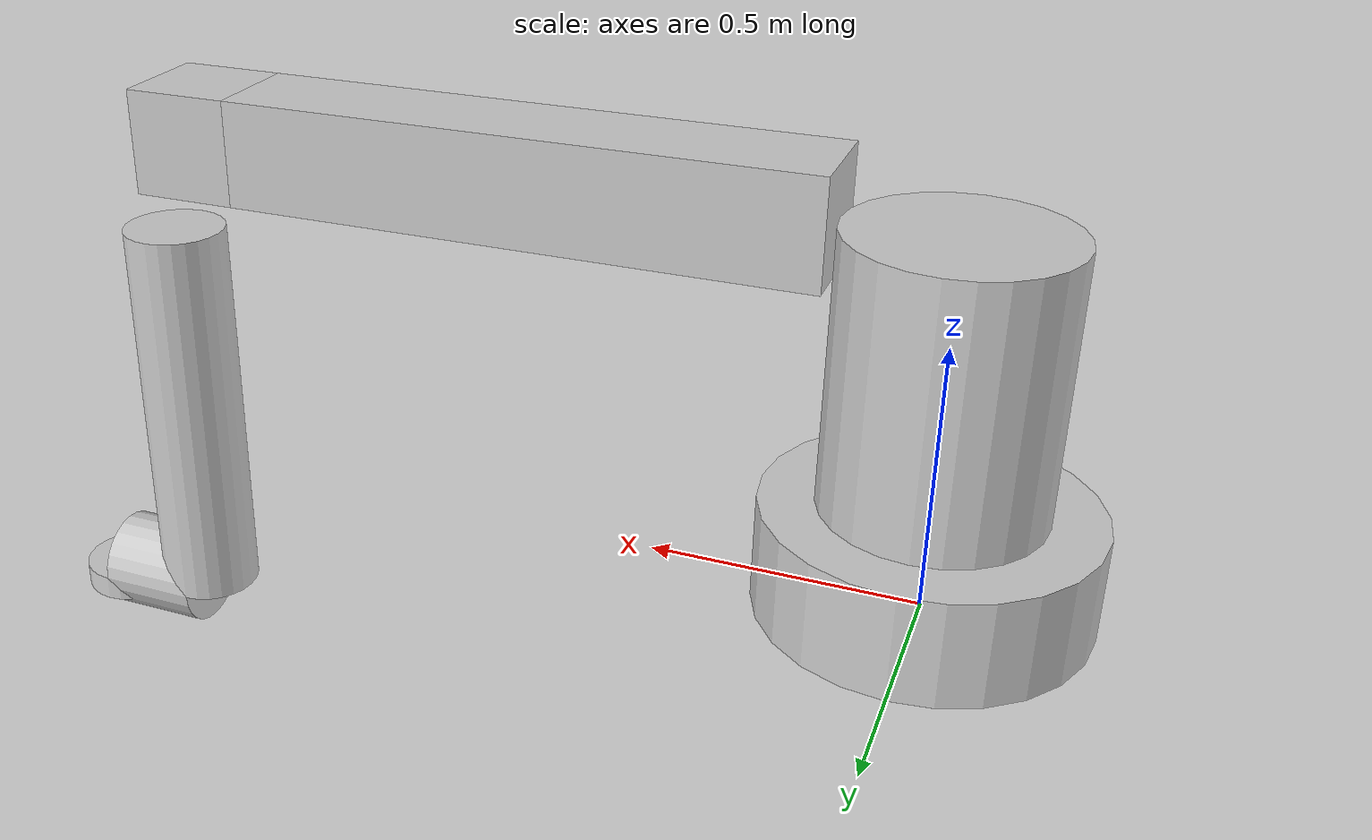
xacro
<?xml version="1.0"?>
<robot xmlns:xacro="http://wiki.ros.org/xacro" name="irb6700_235">
  <!-- Constants for IRB 6700-235/2.65 -->
  <!-- Using approximate inertias and distances for representation since exact ABB CAD is complex -->

  <material name="abb_white">
    <color rgba="0.8 0.8 0.8 1.0"/>
  </material>

  <link name="base_link">
    <visual>
      <geometry><cylinder length="0.2" radius="0.3"/></geometry>
      <origin xyz="0 0 0.1" rpy="0 0 0"/>
      <material name="abb_white"/>
    </visual>
    <collision>
      <geometry><cylinder length="0.2" radius="0.3"/></geometry>
      <origin xyz="0 0 0.1" rpy="0 0 0"/>
    </collision>
    <inertial>
      <mass value="50.0"/>
      <origin xyz="0 0 0.1" rpy="0 0 0"/>
      <inertia ixx="1.0" ixy="0" ixz="0" iyy="1.0" iyz="0" izz="1.0"/>
    </inertial>
  </link>

  <link name="link_1">
    <visual>
      <geometry><cylinder length="0.5" radius="0.2"/></geometry>
      <origin xyz="0 0 0.25" rpy="0 0 0"/>
      <material name="abb_white"/>
    </visual>
    <collision>
      <geometry><cylinder length="0.5" radius="0.2"/></geometry>
      <origin xyz="0 0 0.25" rpy="0 0 0"/>
    </collision>
    <inertial>
      <mass value="40.0"/>
      <origin xyz="0 0 0.25" rpy="0 0 0"/>
      <inertia ixx="1.0" ixy="0" ixz="0" iyy="1.0" iyz="0" izz="1.0"/>
    </inertial>
  </link>
  <joint name="joint_1" type="revolute">
    <parent link="base_link"/>
    <child link="link_1"/>
    <origin xyz="0 0 0.2" rpy="0 0 0"/>
    <axis xyz="0 0 1"/>
    <limit lower="-2.96" upper="2.96" effort="5000.0" velocity="1.74"/>
    <dynamics damping="50.0" friction="20.0"/>
  </joint>

  <link name="link_2">
    <visual>
      <geometry><box size="0.2 0.2 1.1"/></geometry>
      <origin xyz="0 0 0.55" rpy="0 0 0"/>
      <material name="abb_white"/>
    </visual>
    <collision>
      <geometry><box size="0.2 0.2 1.1"/></geometry>
      <origin xyz="0 0 0.55" rpy="0 0 0"/>
    </collision>
    <inertial>
      <mass value="40.0"/>
      <origin xyz="0 0 0.55" rpy="0 0 0"/>
      <inertia ixx="2.0" ixy="0" ixz="0" iyy="2.0" iyz="0" izz="0.5"/>
    </inertial>
  </link>
  <joint name="joint_2" type="revolute">
    <parent link="link_1"/>
    <child link="link_2"/>
    <origin xyz="0.2 0 0.5" rpy="0 1.570796327 0"/>
    <axis xyz="0 1 0"/>
    <limit lower="-1.13" upper="1.48" effort="4000.0" velocity="1.57"/>
    <dynamics damping="50.0" friction="20.0"/>
  </joint>

  <link name="link_3">
    <visual>
      <geometry><box size="0.2 0.2 0.2"/></geometry>
      <origin xyz="0 0 0.1" rpy="0 0 0"/>
      <material name="abb_white"/>
    </visual>
    <collision>
      <geometry><box size="0.2 0.2 0.2"/></geometry>
      <origin xyz="0 0 0.1" rpy="0 0 0"/>
    </collision>
    <inertial>
      <mass value="20.0"/>
      <origin xyz="0 0 0.1" rpy="0 0 0"/>
      <inertia ixx="0.5" ixy="0" ixz="0" iyy="0.5" iyz="0" izz="0.5"/>
    </inertial>
  </link>
  <joint name="joint_3" type="revolute">
    <parent link="link_2"/>
    <child link="link_3"/>
    <origin xyz="0 0 1.1" rpy="0 0 0"/>
    <axis xyz="0 1 0"/>
    <limit lower="-3.14" upper="1.22" effort="3000.0" velocity="1.57"/>
    <dynamics damping="50.0" friction="20.0"/>
  </joint>

  <link name="link_4">
    <visual>
      <geometry><cylinder length="0.8" radius="0.1"/></geometry>
      <origin xyz="0 0 0.4" rpy="0 0 0"/>
      <material name="abb_white"/>
    </visual>
    <collision>
      <geometry><cylinder length="0.8" radius="0.1"/></geometry>
      <origin xyz="0 0 0.4" rpy="0 0 0"/>
    </collision>
    <inertial>
      <mass value="15.0"/>
      <origin xyz="0 0 0.4" rpy="0 0 0"/>
      <inertia ixx="0.3" ixy="0" ixz="0" iyy="0.3" iyz="0" izz="0.1"/>
    </inertial>
  </link>
  <joint name="joint_4" type="revolute">
    <parent link="link_3"/>
    <child link="link_4"/>
    <origin xyz="0.2 0 0.2" rpy="0 1.570796327 0"/>
    <axis xyz="0 0 1"/>
    <limit lower="-5.23" upper="5.23" effort="1000.0" velocity="2.96"/>
    <dynamics damping="20.0" friction="10.0"/>
  </joint>

  <link name="link_5">
    <visual>
      <geometry><cylinder length="0.2" radius="0.1"/></geometry>
      <origin xyz="0 0 0.1" rpy="0 0 0"/>
      <material name="abb_white"/>
    </visual>
    <collision>
      <geometry><cylinder length="0.2" radius="0.1"/></geometry>
      <origin xyz="0 0 0.1" rpy="0 0 0"/>
    </collision>
    <inertial>
      <mass value="10.0"/>
      <origin xyz="0 0 0.1" rpy="0 0 0"/>
      <inertia ixx="0.1" ixy="0" ixz="0" iyy="0.1" iyz="0" izz="0.1"/>
    </inertial>
  </link>
  <joint name="joint_5" type="revolute">
    <parent link="link_4"/>
    <child link="link_5"/>
    <origin xyz="0 0 0.8" rpy="0 -1.570796327 0"/>
    <axis xyz="0 1 0"/>
    <limit lower="-2.26" upper="2.26" effort="800.0" velocity="2.44"/>
    <dynamics damping="20.0" friction="10.0"/>
  </joint>

  <link name="link_6">
    <visual>
      <geometry><cylinder length="0.05" radius="0.1"/></geometry>
      <origin xyz="0 0 0.025" rpy="0 0 0"/>
      <material name="abb_white"/>
    </visual>
    <collision>
      <geometry><cylinder length="0.05" radius="0.1"/></geometry>
      <origin xyz="0 0 0.025" rpy="0 0 0"/>
    </collision>
    <inertial>
      <mass value="2.0"/>
      <origin xyz="0 0 0.025" rpy="0 0 0"/>
      <inertia ixx="0.01" ixy="0" ixz="0" iyy="0.01" iyz="0" izz="0.01"/>
    </inertial>
  </link>
  <joint name="joint_6" type="revolute">
    <parent link="link_5"/>
    <child link="link_6"/>
    <origin xyz="0 0 0.2" rpy="0 1.570796327 0"/>
    <axis xyz="0 0 1"/>
    <limit lower="-6.28" upper="6.28" effort="500.0" velocity="3.31"/>
    <dynamics damping="10.0" friction="5.0"/>
  </joint>

  <!-- Dummy tool0 definition -->
  <link name="tool0"/>
  <joint name="joint_6-tool0" type="fixed">
    <parent link="link_6"/>
    <child link="tool0"/>
    <origin xyz="0 0 0.05" rpy="0 0 0"/>
  </joint>

  <!-- ROS2 Control integration specific to DartSim -->
  <ros2_control name="DartSystem" type="system">
    <hardware>
      <plugin>dart_ros2_control/DartSystem</plugin>
    </hardware>
    <!-- joints -->
    <joint name="joint_1">
      <command_interface name="position"/>
      <state_interface name="position"/>
      <state_interface name="velocity"/>
    </joint>
    <joint name="joint_2">
      <command_interface name="position"/>
      <state_interface name="position"/>
      <state_interface name="velocity"/>
    </joint>
    <joint name="joint_3">
      <command_interface name="position"/>
      <state_interface name="position"/>
      <state_interface name="velocity"/>
    </joint>
    <joint name="joint_4">
      <command_interface name="position"/>
      <state_interface name="position"/>
      <state_interface name="velocity"/>
    </joint>
    <joint name="joint_5">
      <command_interface name="position"/>
      <state_interface name="position"/>
      <state_interface name="velocity"/>
    </joint>
    <joint name="joint_6">
      <command_interface name="position"/>
      <state_interface name="position"/>
      <state_interface name="velocity"/>
    </joint>
  </ros2_control>

</robot>
